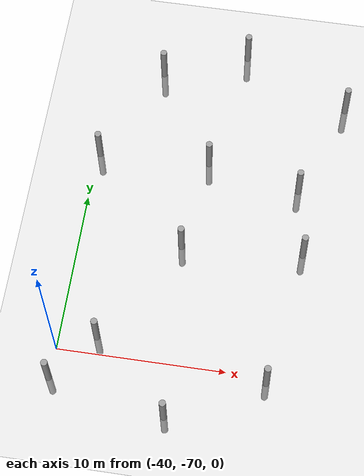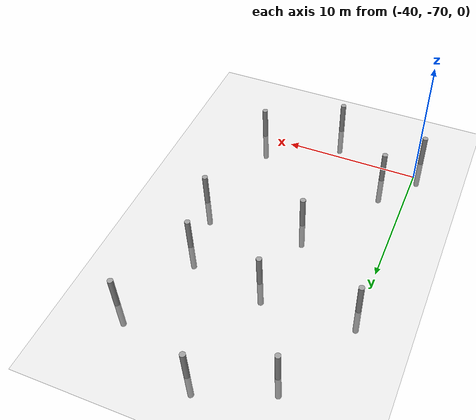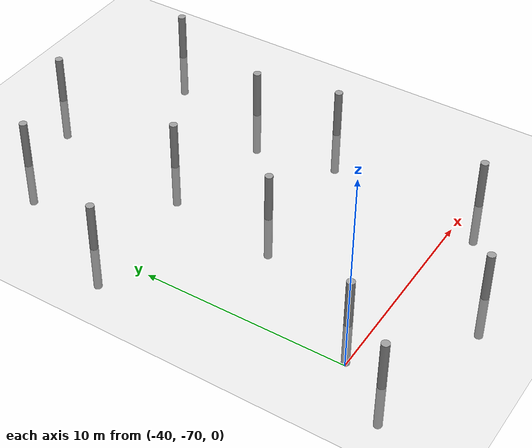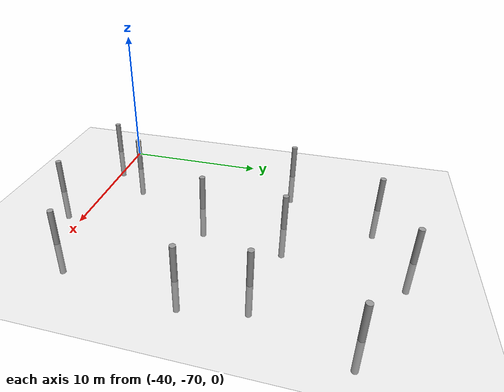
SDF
<sdf version="1.6">
 <world name="default">
  <model name="ground_plane">
   <static>1</static>
   <link name="link">
    <collision name="collision">
     <geometry><plane><normal>0 0 1</normal><size>100 100</size></plane></geometry>
     <surface><friction><ode><mu>100</mu><mu2>50</mu2></ode></friction></surface>
    </collision>
    <visual name="visual">
     <cast_shadows>0</cast_shadows>
     <geometry><plane><normal>0 0 1</normal><size>100 100</size></plane></geometry>
     <material>
      <script><uri>file://media/materials/scripts/gazebo.material</uri><name>Gazebo/Grey</name></script>
     </material>
    </visual>
   </link>
  </model>
  <model name="empty_pillars_12">
   <model name="empty_pillar">
    <link name="link">
     <inertial>
      <mass>1</mass>
      <inertia><ixx>0.145833</ixx><ixy>0</ixy><ixz>0</ixz><iyy>0.145833</iyy><iyz>0</iyz><izz>0.125</izz></inertia>
     </inertial>
     <visual name="visual">
      <geometry><cylinder><radius>0.2</radius><length>5</length></cylinder></geometry>
      <material>
       <script><name>Gazebo/Grey</name><uri>file://media/materials/scripts/gazebo.material</uri></script>
       <shader type="vertex"><normal_map>__default__</normal_map></shader>
       <ambient>0.3 0.3 0.3 1</ambient>
       <diffuse>0.7 0.7 0.7 1</diffuse>
       <specular>0.01 0.01 0.01 1</specular>
       <emissive>0 0 0 1</emissive>
      </material>
     </visual>
     <collision name="collision">
      <geometry><cylinder><radius>0.05</radius><length>5</length></cylinder></geometry>
      <surface>
       <friction>
        <ode><mu>1</mu><mu2>1</mu2><fdir1>0 0 0</fdir1><slip1>0</slip1><slip2>0</slip2></ode>
        <torsional>
         <coefficient>1</coefficient>
         <patch_radius>0</patch_radius>
         <surface_radius>0</surface_radius>
         <use_patch_radius>1</use_patch_radius>
         <ode><slip>0</slip></ode>
        </torsional>
       </friction>
       <bounce><restitution_coefficient>0</restitution_coefficient><threshold>1e+06</threshold></bounce>
       <contact>
        <collide_without_contact>0</collide_without_contact>
        <collide_without_contact_bitmask>1</collide_without_contact_bitmask>
        <collide_bitmask>1</collide_bitmask>
        <ode>
         <soft_cfm>0</soft_cfm>
         <soft_erp>0.2</soft_erp>
         <kp>1e+13</kp>
         <kd>1</kd>
         <max_vel>0.01</max_vel>
         <min_depth>0</min_depth>
        </ode>
        <bullet>
         <split_impulse>1</split_impulse>
         <split_impulse_penetration_threshold>-0.01</split_impulse_penetration_threshold>
         <soft_cfm>0</soft_cfm>
         <soft_erp>0.2</soft_erp>
         <kp>1e+13</kp>
         <kd>1</kd>
        </bullet>
       </contact>
      </surface>
     </collision>
    </link>
    <static>0</static>
    <pose>-3.84527 -0.717439 0 0 -0 0</pose>
   </model>
   <model name="empty_pillar_clone_14">
    <link name="link">
     <inertial>
      <mass>1</mass>
      <inertia><ixx>0.145833</ixx><ixy>0</ixy><ixz>0</ixz><iyy>0.145833</iyy><iyz>0</iyz><izz>0.125</izz></inertia>
     </inertial>
     <visual name="visual">
      <geometry><cylinder><radius>0.2</radius><length>5</length></cylinder></geometry>
      <material>
       <script><name>Gazebo/Grey</name><uri>file://media/materials/scripts/gazebo.material</uri></script>
       <shader type="vertex"><normal_map>__default__</normal_map></shader>
       <ambient>0.3 0.3 0.3 1</ambient>
       <diffuse>0.7 0.7 0.7 1</diffuse>
       <specular>0.01 0.01 0.01 1</specular>
       <emissive>0 0 0 1</emissive>
      </material>
     </visual>
     <collision name="collision">
      <geometry><cylinder><radius>0.05</radius><length>5</length></cylinder></geometry>
      <surface>
       <friction>
        <ode><mu>1</mu><mu2>1</mu2><fdir1>0 0 0</fdir1><slip1>0</slip1><slip2>0</slip2></ode>
        <torsional>
         <coefficient>1</coefficient>
         <patch_radius>0</patch_radius>
         <surface_radius>0</surface_radius>
         <use_patch_radius>1</use_patch_radius>
         <ode><slip>0</slip></ode>
        </torsional>
       </friction>
       <bounce><restitution_coefficient>0</restitution_coefficient><threshold>1e+06</threshold></bounce>
       <contact>
        <collide_without_contact>0</collide_without_contact>
        <collide_without_contact_bitmask>1</collide_without_contact_bitmask>
        <collide_bitmask>1</collide_bitmask>
        <ode>
         <soft_cfm>0</soft_cfm>
         <soft_erp>0.2</soft_erp>
         <kp>1e+13</kp>
         <kd>1</kd>
         <max_vel>0.01</max_vel>
         <min_depth>0</min_depth>
        </ode>
        <bullet>
         <split_impulse>1</split_impulse>
         <split_impulse_penetration_threshold>-0.01</split_impulse_penetration_threshold>
         <soft_cfm>0</soft_cfm>
         <soft_erp>0.2</soft_erp>
         <kp>1e+13</kp>
         <kd>1</kd>
        </bullet>
       </contact>
      </surface>
     </collision>
    </link>
    <static>0</static>
    <pose>-14.0146 0.646152 0 0 -0 0</pose>
   </model>
   <model name="empty_pillar_clone_15">
    <link name="link">
     <inertial>
      <mass>1</mass>
      <inertia><ixx>0.145833</ixx><ixy>0</ixy><ixz>0</ixz><iyy>0.145833</iyy><iyz>0</iyz><izz>0.125</izz></inertia>
     </inertial>
     <visual name="visual">
      <geometry><cylinder><radius>0.2</radius><length>5</length></cylinder></geometry>
      <material>
       <script><name>Gazebo/Grey</name><uri>file://media/materials/scripts/gazebo.material</uri></script>
       <shader type="vertex"><normal_map>__default__</normal_map></shader>
       <ambient>0.3 0.3 0.3 1</ambient>
       <diffuse>0.7 0.7 0.7 1</diffuse>
       <specular>0.01 0.01 0.01 1</specular>
       <emissive>0 0 0 1</emissive>
      </material>
     </visual>
     <collision name="collision">
      <geometry><cylinder><radius>0.05</radius><length>5</length></cylinder></geometry>
      <surface>
       <friction>
        <ode><mu>1</mu><mu2>1</mu2><fdir1>0 0 0</fdir1><slip1>0</slip1><slip2>0</slip2></ode>
        <torsional>
         <coefficient>1</coefficient>
         <patch_radius>0</patch_radius>
         <surface_radius>0</surface_radius>
         <use_patch_radius>1</use_patch_radius>
         <ode><slip>0</slip></ode>
        </torsional>
       </friction>
       <bounce><restitution_coefficient>0</restitution_coefficient><threshold>1e+06</threshold></bounce>
       <contact>
        <collide_without_contact>0</collide_without_contact>
        <collide_without_contact_bitmask>1</collide_without_contact_bitmask>
        <collide_bitmask>1</collide_bitmask>
        <ode>
         <soft_cfm>0</soft_cfm>
         <soft_erp>0.2</soft_erp>
         <kp>1e+13</kp>
         <kd>1</kd>
         <max_vel>0.01</max_vel>
         <min_depth>0</min_depth>
        </ode>
        <bullet>
         <split_impulse>1</split_impulse>
         <split_impulse_penetration_threshold>-0.01</split_impulse_penetration_threshold>
         <soft_cfm>0</soft_cfm>
         <soft_erp>0.2</soft_erp>
         <kp>1e+13</kp>
         <kd>1</kd>
        </bullet>
       </contact>
      </surface>
     </collision>
    </link>
    <static>0</static>
    <pose>-9.37193 -3.58732 0 0 -0 0</pose>
   </model>
   <model name="empty_pillar_clone_16">
    <link name="link">
     <inertial>
      <mass>1</mass>
      <inertia><ixx>0.145833</ixx><ixy>0</ixy><ixz>0</ixz><iyy>0.145833</iyy><iyz>0</iyz><izz>0.125</izz></inertia>
     </inertial>
     <visual name="visual">
      <geometry><cylinder><radius>0.2</radius><length>5</length></cylinder></geometry>
      <material>
       <script><name>Gazebo/Grey</name><uri>file://media/materials/scripts/gazebo.material</uri></script>
       <shader type="vertex"><normal_map>__default__</normal_map></shader>
       <ambient>0.3 0.3 0.3 1</ambient>
       <diffuse>0.7 0.7 0.7 1</diffuse>
       <specular>0.01 0.01 0.01 1</specular>
       <emissive>0 0 0 1</emissive>
      </material>
     </visual>
     <collision name="collision">
      <geometry><cylinder><radius>0.05</radius><length>5</length></cylinder></geometry>
      <surface>
       <friction>
        <ode><mu>1</mu><mu2>1</mu2><fdir1>0 0 0</fdir1><slip1>0</slip1><slip2>0</slip2></ode>
        <torsional>
         <coefficient>1</coefficient>
         <patch_radius>0</patch_radius>
         <surface_radius>0</surface_radius>
         <use_patch_radius>1</use_patch_radius>
         <ode><slip>0</slip></ode>
        </torsional>
       </friction>
       <bounce><restitution_coefficient>0</restitution_coefficient><threshold>1e+06</threshold></bounce>
       <contact>
        <collide_without_contact>0</collide_without_contact>
        <collide_without_contact_bitmask>1</collide_without_contact_bitmask>
        <collide_bitmask>1</collide_bitmask>
        <ode>
         <soft_cfm>0</soft_cfm>
         <soft_erp>0.2</soft_erp>
         <kp>1e+13</kp>
         <kd>1</kd>
         <max_vel>0.01</max_vel>
         <min_depth>0</min_depth>
        </ode>
        <bullet>
         <split_impulse>1</split_impulse>
         <split_impulse_penetration_threshold>-0.01</split_impulse_penetration_threshold>
         <soft_cfm>0</soft_cfm>
         <soft_erp>0.2</soft_erp>
         <kp>1e+13</kp>
         <kd>1</kd>
        </bullet>
       </contact>
      </surface>
     </collision>
    </link>
    <static>0</static>
    <pose>-9.20789 13.0504 0 0 -0 0</pose>
   </model>
   <model name="empty_pillar_clone_17">
    <link name="link">
     <inertial>
      <mass>1</mass>
      <inertia><ixx>0.145833</ixx><ixy>0</ixy><ixz>0</ixz><iyy>0.145833</iyy><iyz>0</iyz><izz>0.125</izz></inertia>
     </inertial>
     <visual name="visual">
      <geometry><cylinder><radius>0.2</radius><length>5</length></cylinder></geometry>
      <material>
       <script><name>Gazebo/Grey</name><uri>file://media/materials/scripts/gazebo.material</uri></script>
       <shader type="vertex"><normal_map>__default__</normal_map></shader>
       <ambient>0.3 0.3 0.3 1</ambient>
       <diffuse>0.7 0.7 0.7 1</diffuse>
       <specular>0.01 0.01 0.01 1</specular>
       <emissive>0 0 0 1</emissive>
      </material>
     </visual>
     <collision name="collision">
      <geometry><cylinder><radius>0.05</radius><length>5</length></cylinder></geometry>
      <surface>
       <friction>
        <ode><mu>1</mu><mu2>1</mu2><fdir1>0 0 0</fdir1><slip1>0</slip1><slip2>0</slip2></ode>
        <torsional>
         <coefficient>1</coefficient>
         <patch_radius>0</patch_radius>
         <surface_radius>0</surface_radius>
         <use_patch_radius>1</use_patch_radius>
         <ode><slip>0</slip></ode>
        </torsional>
       </friction>
       <bounce><restitution_coefficient>0</restitution_coefficient><threshold>1e+06</threshold></bounce>
       <contact>
        <collide_without_contact>0</collide_without_contact>
        <collide_without_contact_bitmask>1</collide_without_contact_bitmask>
        <collide_bitmask>1</collide_bitmask>
        <ode>
         <soft_cfm>0</soft_cfm>
         <soft_erp>0.2</soft_erp>
         <kp>1e+13</kp>
         <kd>1</kd>
         <max_vel>0.01</max_vel>
         <min_depth>0</min_depth>
        </ode>
        <bullet>
         <split_impulse>1</split_impulse>
         <split_impulse_penetration_threshold>-0.01</split_impulse_penetration_threshold>
         <soft_cfm>0</soft_cfm>
         <soft_erp>0.2</soft_erp>
         <kp>1e+13</kp>
         <kd>1</kd>
        </bullet>
       </contact>
      </surface>
     </collision>
    </link>
    <static>0</static>
    <pose>-16.0449 12.755 0 0 -0 0</pose>
   </model>
   <model name="empty_pillar_clone_19">
    <link name="link">
     <inertial>
      <mass>1</mass>
      <inertia><ixx>0.145833</ixx><ixy>0</ixy><ixz>0</ixz><iyy>0.145833</iyy><iyz>0</iyz><izz>0.125</izz></inertia>
     </inertial>
     <visual name="visual">
      <geometry><cylinder><radius>0.2</radius><length>5</length></cylinder></geometry>
      <material>
       <script><name>Gazebo/Grey</name><uri>file://media/materials/scripts/gazebo.material</uri></script>
       <shader type="vertex"><normal_map>__default__</normal_map></shader>
       <ambient>0.3 0.3 0.3 1</ambient>
       <diffuse>0.7 0.7 0.7 1</diffuse>
       <specular>0.01 0.01 0.01 1</specular>
       <emissive>0 0 0 1</emissive>
      </material>
     </visual>
     <collision name="collision">
      <geometry><cylinder><radius>0.05</radius><length>5</length></cylinder></geometry>
      <surface>
       <friction>
        <ode><mu>1</mu><mu2>1</mu2><fdir1>0 0 0</fdir1><slip1>0</slip1><slip2>0</slip2></ode>
        <torsional>
         <coefficient>1</coefficient>
         <patch_radius>0</patch_radius>
         <surface_radius>0</surface_radius>
         <use_patch_radius>1</use_patch_radius>
         <ode><slip>0</slip></ode>
        </torsional>
       </friction>
       <bounce><restitution_coefficient>0</restitution_coefficient><threshold>1e+06</threshold></bounce>
       <contact>
        <collide_without_contact>0</collide_without_contact>
        <collide_without_contact_bitmask>1</collide_without_contact_bitmask>
        <collide_bitmask>1</collide_bitmask>
        <ode>
         <soft_cfm>0</soft_cfm>
         <soft_erp>0.2</soft_erp>
         <kp>1e+13</kp>
         <kd>1</kd>
         <max_vel>0.01</max_vel>
         <min_depth>0</min_depth>
        </ode>
        <bullet>
         <split_impulse>1</split_impulse>
         <split_impulse_penetration_threshold>-0.01</split_impulse_penetration_threshold>
         <soft_cfm>0</soft_cfm>
         <soft_erp>0.2</soft_erp>
         <kp>1e+13</kp>
         <kd>1</kd>
        </bullet>
       </contact>
      </surface>
     </collision>
    </link>
    <static>0</static>
    <pose>-10.0146 7.15966 0 0 -0 0</pose>
   </model>
   <model name="empty_pillar_clone_20">
    <link name="link">
     <inertial>
      <mass>1</mass>
      <inertia><ixx>0.145833</ixx><ixy>0</ixy><ixz>0</ixz><iyy>0.145833</iyy><iyz>0</iyz><izz>0.125</izz></inertia>
     </inertial>
     <visual name="visual">
      <geometry><cylinder><radius>0.2</radius><length>5</length></cylinder></geometry>
      <material>
       <script><name>Gazebo/Grey</name><uri>file://media/materials/scripts/gazebo.material</uri></script>
       <shader type="vertex"><normal_map>__default__</normal_map></shader>
       <ambient>0.3 0.3 0.3 1</ambient>
       <diffuse>0.7 0.7 0.7 1</diffuse>
       <specular>0.01 0.01 0.01 1</specular>
       <emissive>0 0 0 1</emissive>
      </material>
     </visual>
     <collision name="collision">
      <geometry><cylinder><radius>0.05</radius><length>5</length></cylinder></geometry>
      <surface>
       <friction>
        <ode><mu>1</mu><mu2>1</mu2><fdir1>0 0 0</fdir1><slip1>0</slip1><slip2>0</slip2></ode>
        <torsional>
         <coefficient>1</coefficient>
         <patch_radius>0</patch_radius>
         <surface_radius>0</surface_radius>
         <use_patch_radius>1</use_patch_radius>
         <ode><slip>0</slip></ode>
        </torsional>
       </friction>
       <bounce><restitution_coefficient>0</restitution_coefficient><threshold>1e+06</threshold></bounce>
       <contact>
        <collide_without_contact>0</collide_without_contact>
        <collide_without_contact_bitmask>1</collide_without_contact_bitmask>
        <collide_bitmask>1</collide_bitmask>
        <ode>
         <soft_cfm>0</soft_cfm>
         <soft_erp>0.2</soft_erp>
         <kp>1e+13</kp>
         <kd>1</kd>
         <max_vel>0.01</max_vel>
         <min_depth>0</min_depth>
        </ode>
        <bullet>
         <split_impulse>1</split_impulse>
         <split_impulse_penetration_threshold>-0.01</split_impulse_penetration_threshold>
         <soft_cfm>0</soft_cfm>
         <soft_erp>0.2</soft_erp>
         <kp>1e+13</kp>
         <kd>1</kd>
        </bullet>
       </contact>
      </surface>
     </collision>
    </link>
    <static>0</static>
    <pose>-13.0146 19.1597 0 0 -0 0</pose>
   </model>
   <model name="empty_pillar_clone_23">
    <link name="link">
     <inertial>
      <mass>1</mass>
      <inertia><ixx>0.145833</ixx><ixy>0</ixy><ixz>0</ixz><iyy>0.145833</iyy><iyz>0</iyz><izz>0.125</izz></inertia>
     </inertial>
     <visual name="visual">
      <geometry><cylinder><radius>0.2</radius><length>5</length></cylinder></geometry>
      <material>
       <script><name>Gazebo/Grey</name><uri>file://media/materials/scripts/gazebo.material</uri></script>
       <shader type="vertex"><normal_map>__default__</normal_map></shader>
       <ambient>0.3 0.3 0.3 1</ambient>
       <diffuse>0.7 0.7 0.7 1</diffuse>
       <specular>0.01 0.01 0.01 1</specular>
       <emissive>0 0 0 1</emissive>
      </material>
     </visual>
     <collision name="collision">
      <geometry><cylinder><radius>0.05</radius><length>5</length></cylinder></geometry>
      <surface>
       <friction>
        <ode><mu>1</mu><mu2>1</mu2><fdir1>0 0 0</fdir1><slip1>0</slip1><slip2>0</slip2></ode>
        <torsional>
         <coefficient>1</coefficient>
         <patch_radius>0</patch_radius>
         <surface_radius>0</surface_radius>
         <use_patch_radius>1</use_patch_radius>
         <ode><slip>0</slip></ode>
        </torsional>
       </friction>
       <bounce><restitution_coefficient>0</restitution_coefficient><threshold>1e+06</threshold></bounce>
       <contact>
        <collide_without_contact>0</collide_without_contact>
        <collide_without_contact_bitmask>1</collide_without_contact_bitmask>
        <collide_bitmask>1</collide_bitmask>
        <ode>
         <soft_cfm>0</soft_cfm>
         <soft_erp>0.2</soft_erp>
         <kp>1e+13</kp>
         <kd>1</kd>
         <max_vel>0.01</max_vel>
         <min_depth>0</min_depth>
        </ode>
        <bullet>
         <split_impulse>1</split_impulse>
         <split_impulse_penetration_threshold>-0.01</split_impulse_penetration_threshold>
         <soft_cfm>0</soft_cfm>
         <soft_erp>0.2</soft_erp>
         <kp>1e+13</kp>
         <kd>1</kd>
        </bullet>
       </contact>
      </surface>
     </collision>
    </link>
    <static>0</static>
    <pose>-1.21984 18.1273 0 0 -0 0</pose>
   </model>
   <model name="empty_pillar_clone_24">
    <link name="link">
     <inertial>
      <mass>1</mass>
      <inertia><ixx>0.145833</ixx><ixy>0</ixy><ixz>0</ixz><iyy>0.145833</iyy><iyz>0</iyz><izz>0.125</izz></inertia>
     </inertial>
     <visual name="visual">
      <geometry><cylinder><radius>0.2</radius><length>5</length></cylinder></geometry>
      <material>
       <script><name>Gazebo/Grey</name><uri>file://media/materials/scripts/gazebo.material</uri></script>
       <shader type="vertex"><normal_map>__default__</normal_map></shader>
       <ambient>0.3 0.3 0.3 1</ambient>
       <diffuse>0.7 0.7 0.7 1</diffuse>
       <specular>0.01 0.01 0.01 1</specular>
       <emissive>0 0 0 1</emissive>
      </material>
     </visual>
     <collision name="collision">
      <geometry><cylinder><radius>0.05</radius><length>5</length></cylinder></geometry>
      <surface>
       <friction>
        <ode><mu>1</mu><mu2>1</mu2><fdir1>0 0 0</fdir1><slip1>0</slip1><slip2>0</slip2></ode>
        <torsional>
         <coefficient>1</coefficient>
         <patch_radius>0</patch_radius>
         <surface_radius>0</surface_radius>
         <use_patch_radius>1</use_patch_radius>
         <ode><slip>0</slip></ode>
        </torsional>
       </friction>
       <bounce><restitution_coefficient>0</restitution_coefficient><threshold>1e+06</threshold></bounce>
       <contact>
        <collide_without_contact>0</collide_without_contact>
        <collide_without_contact_bitmask>1</collide_without_contact_bitmask>
        <collide_bitmask>1</collide_bitmask>
        <ode>
         <soft_cfm>0</soft_cfm>
         <soft_erp>0.2</soft_erp>
         <kp>1e+13</kp>
         <kd>1</kd>
         <max_vel>0.01</max_vel>
         <min_depth>0</min_depth>
        </ode>
        <bullet>
         <split_impulse>1</split_impulse>
         <split_impulse_penetration_threshold>-0.01</split_impulse_penetration_threshold>
         <soft_cfm>0</soft_cfm>
         <soft_erp>0.2</soft_erp>
         <kp>1e+13</kp>
         <kd>1</kd>
        </bullet>
       </contact>
      </surface>
     </collision>
    </link>
    <static>0</static>
    <pose>-3.46957 11.9413 0 0 -0 0</pose>
   </model>
   <model name="empty_pillar_clone_25">
    <link name="link">
     <inertial>
      <mass>1</mass>
      <inertia><ixx>0.145833</ixx><ixy>0</ixy><ixz>0</ixz><iyy>0.145833</iyy><iyz>0</iyz><izz>0.125</izz></inertia>
     </inertial>
     <visual name="visual">
      <geometry><cylinder><radius>0.2</radius><length>5</length></cylinder></geometry>
      <material>
       <script><name>Gazebo/Grey</name><uri>file://media/materials/scripts/gazebo.material</uri></script>
       <shader type="vertex"><normal_map>__default__</normal_map></shader>
       <ambient>0.3 0.3 0.3 1</ambient>
       <diffuse>0.7 0.7 0.7 1</diffuse>
       <specular>0.01 0.01 0.01 1</specular>
       <emissive>0 0 0 1</emissive>
      </material>
     </visual>
     <collision name="collision">
      <geometry><cylinder><radius>0.05</radius><length>5</length></cylinder></geometry>
      <surface>
       <friction>
        <ode><mu>1</mu><mu2>1</mu2><fdir1>0 0 0</fdir1><slip1>0</slip1><slip2>0</slip2></ode>
        <torsional>
         <coefficient>1</coefficient>
         <patch_radius>0</patch_radius>
         <surface_radius>0</surface_radius>
         <use_patch_radius>1</use_patch_radius>
         <ode><slip>0</slip></ode>
        </torsional>
       </friction>
       <bounce><restitution_coefficient>0</restitution_coefficient><threshold>1e+06</threshold></bounce>
       <contact>
        <collide_without_contact>0</collide_without_contact>
        <collide_without_contact_bitmask>1</collide_without_contact_bitmask>
        <collide_bitmask>1</collide_bitmask>
        <ode>
         <soft_cfm>0</soft_cfm>
         <soft_erp>0.2</soft_erp>
         <kp>1e+13</kp>
         <kd>1</kd>
         <max_vel>0.01</max_vel>
         <min_depth>0</min_depth>
        </ode>
        <bullet>
         <split_impulse>1</split_impulse>
         <split_impulse_penetration_threshold>-0.01</split_impulse_penetration_threshold>
         <soft_cfm>0</soft_cfm>
         <soft_erp>0.2</soft_erp>
         <kp>1e+13</kp>
         <kd>1</kd>
        </bullet>
       </contact>
      </surface>
     </collision>
    </link>
    <static>0</static>
    <pose>-7.86239 21.1314 0 0 -0 0</pose>
   </model>
   <model name="empty_pillar_clone_38">
    <link name="link">
     <inertial>
      <mass>1</mass>
      <inertia><ixx>0.145833</ixx><ixy>0</ixy><ixz>0</ixz><iyy>0.145833</iyy><iyz>0</iyz><izz>0.125</izz></inertia>
     </inertial>
     <visual name="visual">
      <geometry><cylinder><radius>0.2</radius><length>5</length></cylinder></geometry>
      <material>
       <script><name>Gazebo/Grey</name><uri>file://media/materials/scripts/gazebo.material</uri></script>
       <shader type="vertex"><normal_map>__default__</normal_map></shader>
       <ambient>0.3 0.3 0.3 1</ambient>
       <diffuse>0.7 0.7 0.7 1</diffuse>
       <specular>0.01 0.01 0.01 1</specular>
       <emissive>0 0 0 1</emissive>
      </material>
     </visual>
     <collision name="collision">
      <geometry><cylinder><radius>0.05</radius><length>5</length></cylinder></geometry>
      <surface>
       <friction>
        <ode><mu>1</mu><mu2>1</mu2><fdir1>0 0 0</fdir1><slip1>0</slip1><slip2>0</slip2></ode>
        <torsional>
         <coefficient>1</coefficient>
         <patch_radius>0</patch_radius>
         <surface_radius>0</surface_radius>
         <use_patch_radius>1</use_patch_radius>
         <ode><slip>0</slip></ode>
        </torsional>
       </friction>
       <bounce><restitution_coefficient>0</restitution_coefficient><threshold>1e+06</threshold></bounce>
       <contact>
        <collide_without_contact>0</collide_without_contact>
        <collide_without_contact_bitmask>1</collide_without_contact_bitmask>
        <collide_bitmask>1</collide_bitmask>
        <ode>
         <soft_cfm>0</soft_cfm>
         <soft_erp>0.2</soft_erp>
         <kp>1e+13</kp>
         <kd>1</kd>
         <max_vel>0.01</max_vel>
         <min_depth>0</min_depth>
        </ode>
        <bullet>
         <split_impulse>1</split_impulse>
         <split_impulse_penetration_threshold>-0.01</split_impulse_penetration_threshold>
         <soft_cfm>0</soft_cfm>
         <soft_erp>0.2</soft_erp>
         <kp>1e+13</kp>
         <kd>1</kd>
        </bullet>
       </contact>
      </surface>
     </collision>
    </link>
    <static>0</static>
    <pose>-16.33 -2.21607 0 0 -0 0</pose>
   </model>
   <model name="empty_pillar_clone_56">
    <link name="link">
     <inertial>
      <mass>1</mass>
      <inertia><ixx>0.145833</ixx><ixy>0</ixy><ixz>0</ixz><iyy>0.145833</iyy><iyz>0</iyz><izz>0.125</izz></inertia>
     </inertial>
     <visual name="visual">
      <geometry><cylinder><radius>0.2</radius><length>5</length></cylinder></geometry>
      <material>
       <script><name>Gazebo/Grey</name><uri>file://media/materials/scripts/gazebo.material</uri></script>
       <shader type="vertex"><normal_map>__default__</normal_map></shader>
       <ambient>0.3 0.3 0.3 1</ambient>
       <diffuse>0.7 0.7 0.7 1</diffuse>
       <specular>0.01 0.01 0.01 1</specular>
       <emissive>0 0 0 1</emissive>
      </material>
     </visual>
     <collision name="collision">
      <geometry><cylinder><radius>0.05</radius><length>5</length></cylinder></geometry>
      <surface>
       <friction>
        <ode><mu>1</mu><mu2>1</mu2><fdir1>0 0 0</fdir1><slip1>0</slip1><slip2>0</slip2></ode>
        <torsional>
         <coefficient>1</coefficient>
         <patch_radius>0</patch_radius>
         <surface_radius>0</surface_radius>
         <use_patch_radius>1</use_patch_radius>
         <ode><slip>0</slip></ode>
        </torsional>
       </friction>
       <bounce><restitution_coefficient>0</restitution_coefficient><threshold>1e+06</threshold></bounce>
       <contact>
        <collide_without_contact>0</collide_without_contact>
        <collide_without_contact_bitmask>1</collide_without_contact_bitmask>
        <collide_bitmask>1</collide_bitmask>
        <ode>
         <soft_cfm>0</soft_cfm>
         <soft_erp>0.2</soft_erp>
         <kp>1e+13</kp>
         <kd>1</kd>
         <max_vel>0.01</max_vel>
         <min_depth>0</min_depth>
        </ode>
        <bullet>
         <split_impulse>1</split_impulse>
         <split_impulse_penetration_threshold>-0.01</split_impulse_penetration_threshold>
         <soft_cfm>0</soft_cfm>
         <soft_erp>0.2</soft_erp>
         <kp>1e+13</kp>
         <kd>1</kd>
        </bullet>
       </contact>
      </surface>
     </collision>
    </link>
    <static>0</static>
    <pose>-2.69782 7.67053 0 0 -0 0</pose>
   </model>
   <static>0</static>
   <pose>-23.7837 -69.5726 0 0 -0 0</pose>
  </model>
 </world>
</sdf>
